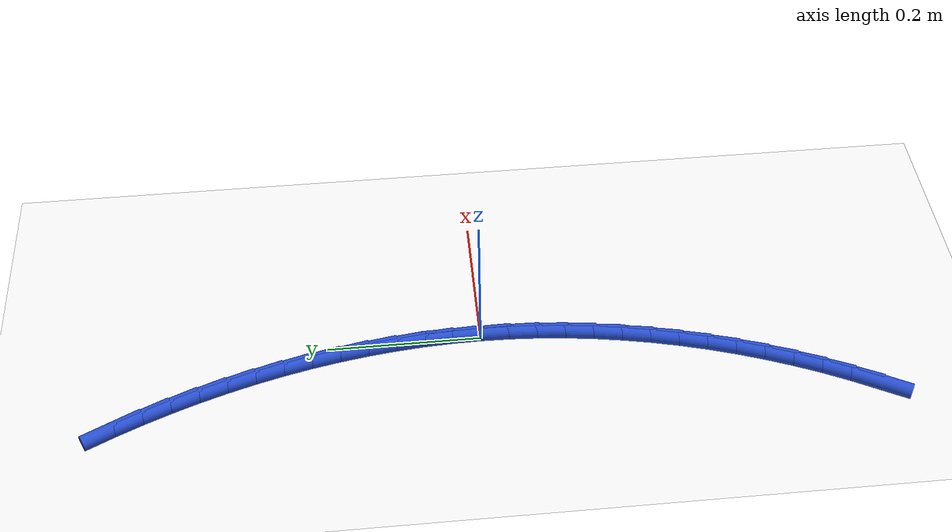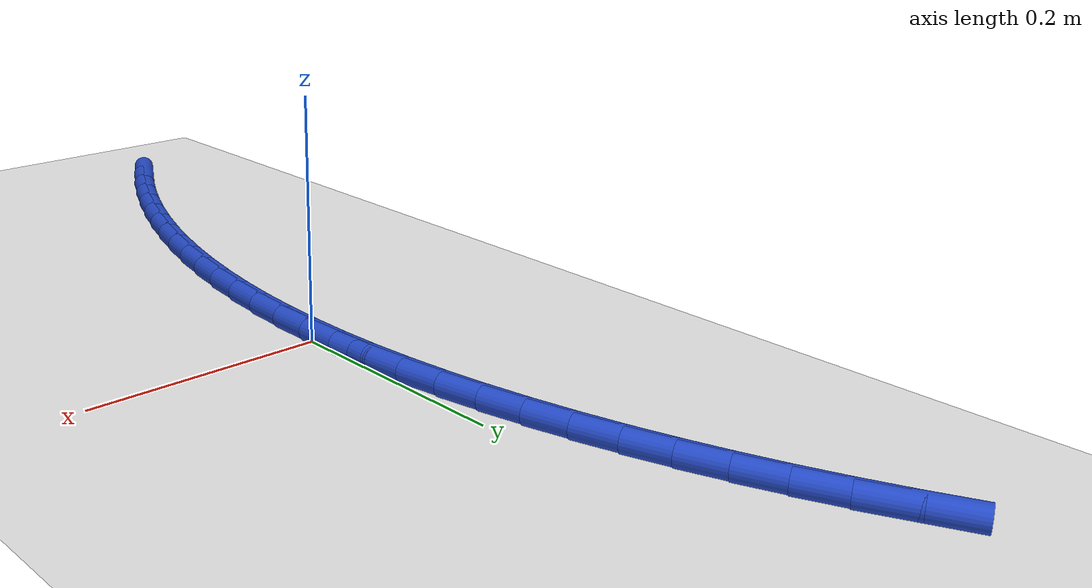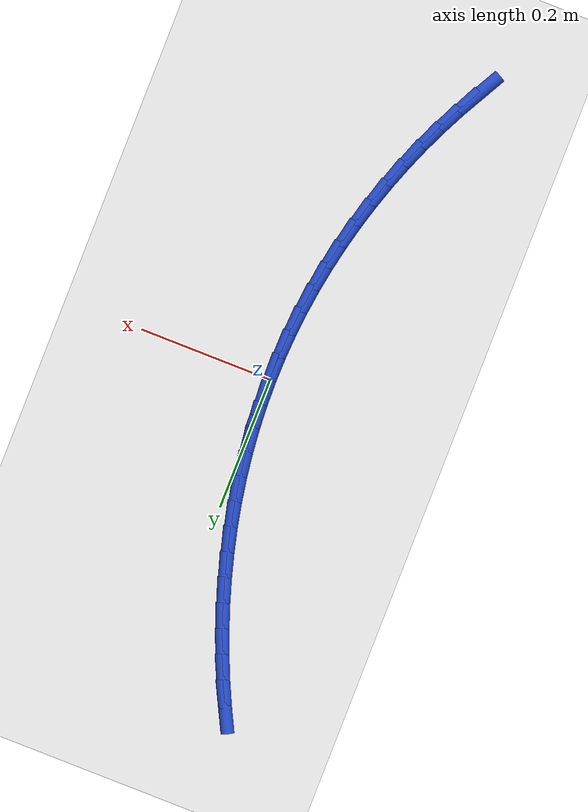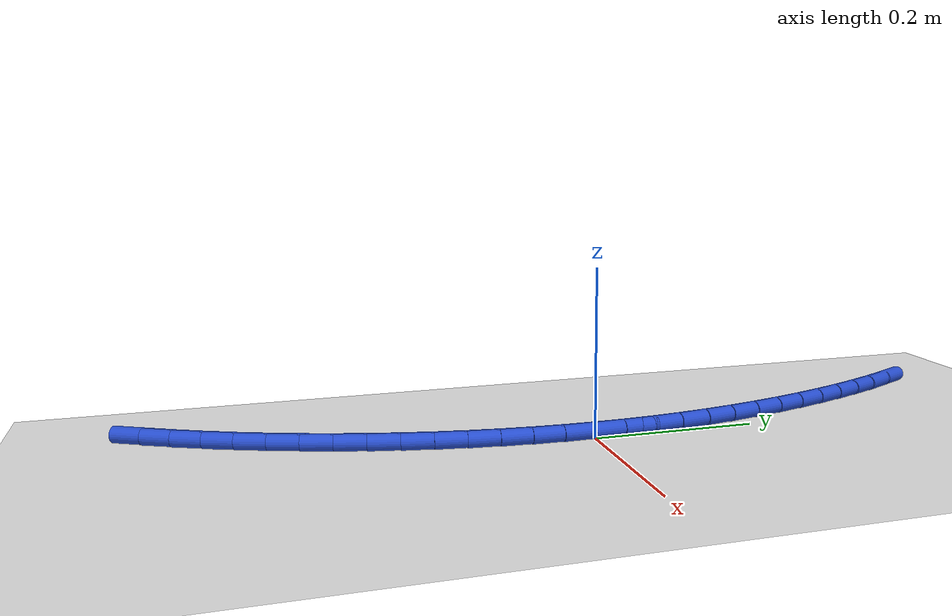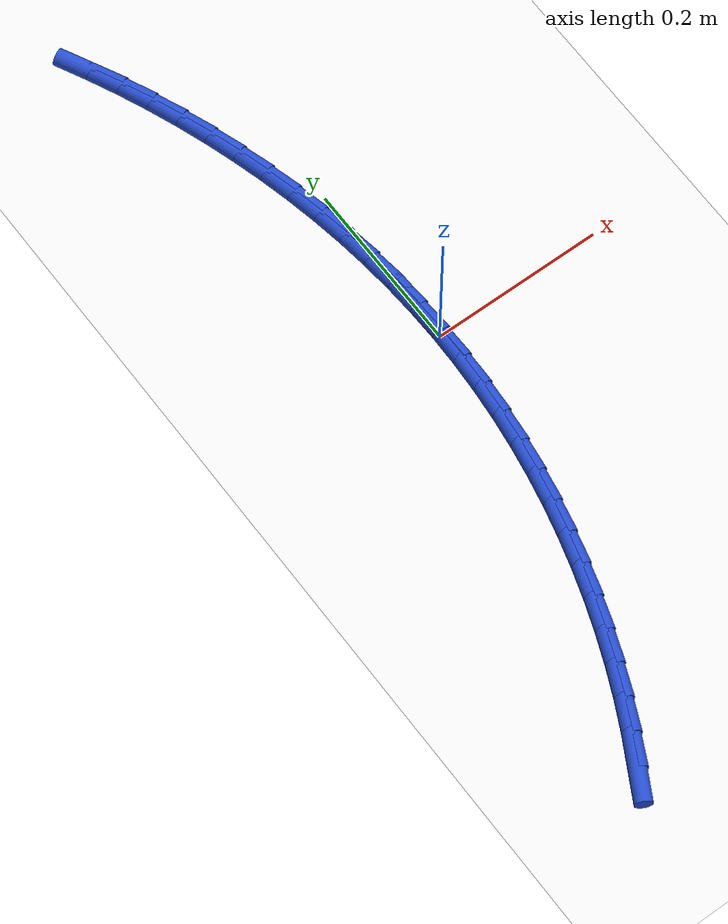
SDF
<sdf version="1.6">
 <world name="default">
  <model name="ground_plane">
   <static>1</static>
   <link name="link">
    <collision name="collision">
     <geometry><plane><normal>0 0 1</normal><size>100 100</size></plane></geometry>
     <surface><friction><ode><mu>100</mu><mu2>50</mu2></ode></friction></surface>
    </collision>
    <visual name="visual">
     <cast_shadows>0</cast_shadows>
     <geometry><plane><normal>0 0 1</normal><size>100 100</size></plane></geometry>
     <material>
      <script><uri>file://media/materials/scripts/gazebo.material</uri><name>Gazebo/WhiteGlow</name></script>
     </material>
    </visual>
   </link>
  </model>
  <model name="line">
   <link name="link_0">
    <pose>1.734723475976807e-18 6.938893903907228e-18 0.01 0 1.57 -1.548803812071096</pose>
    <collision name="collision">
     <geometry><cylinder><radius>0.01</radius><length>0.08</length></cylinder></geometry>
    </collision>
    <visual name="visual">
     <material>
      <script><name>Gazebo/Blue</name><uri>file://media/materials/scripts/gazebo.material</uri></script>
     </material>
     <geometry><cylinder><radius>0.01</radius><length>0.08</length></cylinder></geometry>
    </visual>
   </link>
   <link name="link_1">
    <pose>-0.0008166172128536515 0.0371256111873309 0.01 0 1.57 -1.5104553792389328</pose>
    <collision name="collision">
     <geometry><cylinder><radius>0.01</radius><length>0.08</length></cylinder></geometry>
    </collision>
    <visual name="visual">
     <material>
      <script><name>Gazebo/Blue</name><uri>file://media/materials/scripts/gazebo.material</uri></script>
     </material>
     <geometry><cylinder><radius>0.01</radius><length>0.08</length></cylinder></geometry>
    </visual>
   </link>
   <link name="link_2">
    <pose>-0.003056414222960652 0.07419957259008825 0.01 0 1.57 -1.4729570033766226</pose>
    <collision name="collision">
     <geometry><cylinder><radius>0.01</radius><length>0.08</length></cylinder></geometry>
    </collision>
    <visual name="visual">
     <material>
      <script><name>Gazebo/Blue</name><uri>file://media/materials/scripts/gazebo.material</uri></script>
     </material>
     <geometry><cylinder><radius>0.01</radius><length>0.08</length></cylinder></geometry>
    </visual>
   </link>
   <link name="link_3">
    <pose>-0.006686239691049554 0.11118097981215619 0.01 0 1.57 -1.4362816621876346</pose>
    <collision name="collision">
     <geometry><cylinder><radius>0.01</radius><length>0.08</length></cylinder></geometry>
    </collision>
    <visual name="visual">
     <material>
      <script><name>Gazebo/Blue</name><uri>file://media/materials/scripts/gazebo.material</uri></script>
     </material>
     <geometry><cylinder><radius>0.01</radius><length>0.08</length></cylinder></geometry>
    </visual>
   </link>
   <link name="link_4">
    <pose>-0.011672942277848868 0.14802892845741888 0.01 0 1.57 -1.4003948842519711</pose>
    <collision name="collision">
     <geometry><cylinder><radius>0.01</radius><length>0.08</length></cylinder></geometry>
    </collision>
    <visual name="visual">
     <material>
      <script><name>Gazebo/Blue</name><uri>file://media/materials/scripts/gazebo.material</uri></script>
     </material>
     <geometry><cylinder><radius>0.01</radius><length>0.08</length></cylinder></geometry>
    </visual>
   </link>
   <link name="link_5">
    <pose>-0.01798337064408713 0.18470251412976016 0.01 0 1.57 -1.365255838852558</pose>
    <collision name="collision">
     <geometry><cylinder><radius>0.01</radius><length>0.08</length></cylinder></geometry>
    </collision>
    <visual name="visual">
     <material>
      <script><name>Gazebo/Blue</name><uri>file://media/materials/scripts/gazebo.material</uri></script>
     </material>
     <geometry><cylinder><radius>0.01</radius><length>0.08</length></cylinder></geometry>
    </visual>
   </link>
   <link name="link_6">
    <pose>-0.025584373450492873 0.22116083243306434 0.01 0 1.57 -1.3308183238178624</pose>
    <collision name="collision">
     <geometry><cylinder><radius>0.01</radius><length>0.08</length></cylinder></geometry>
    </collision>
    <visual name="visual">
     <material>
      <script><name>Gazebo/Blue</name><uri>file://media/materials/scripts/gazebo.material</uri></script>
     </material>
     <geometry><cylinder><radius>0.01</radius><length>0.08</length></cylinder></geometry>
    </visual>
   </link>
   <link name="link_7">
    <pose>-0.03444279935779465 0.2573629789712155 0.01 0 1.57 -1.2970316387056642</pose>
    <collision name="collision">
     <geometry><cylinder><radius>0.01</radius><length>0.08</length></cylinder></geometry>
    </collision>
    <visual name="visual">
     <material>
      <script><name>Gazebo/Blue</name><uri>file://media/materials/scripts/gazebo.material</uri></script>
     </material>
     <geometry><cylinder><radius>0.01</radius><length>0.08</length></cylinder></geometry>
    </visual>
   </link>
   <link name="link_8">
    <pose>-0.04452549702672097 0.2932680493480976 0.01 0 1.57 -1.2638413381549296</pose>
    <collision name="collision">
     <geometry><cylinder><radius>0.01</radius><length>0.08</length></cylinder></geometry>
    </collision>
    <visual name="visual">
     <material>
      <script><name>Gazebo/Blue</name><uri>file://media/materials/scripts/gazebo.material</uri></script>
     </material>
     <geometry><cylinder><radius>0.01</radius><length>0.08</length></cylinder></geometry>
    </visual>
   </link>
   <link name="link_9">
    <pose>-0.05579931511800036 0.32883513916759466 0.01 0 1.57 -1.2311793892716603</pose>
    <collision name="collision">
     <geometry><cylinder><radius>0.01</radius><length>0.08</length></cylinder></geometry>
    </collision>
    <visual name="visual">
     <material>
      <script><name>Gazebo/Blue</name><uri>file://media/materials/scripts/gazebo.material</uri></script>
     </material>
     <geometry><cylinder><radius>0.01</radius><length>0.08</length></cylinder></geometry>
    </visual>
   </link>
   <link name="link_10">
    <pose>-0.06823165247662019 0.36402372758744195 0.01 0 1.57 -1.1988521572908928</pose>
    <collision name="collision">
     <geometry><cylinder><radius>0.01</radius><length>0.08</length></cylinder></geometry>
    </collision>
    <visual name="visual">
     <material>
      <script><name>Gazebo/Blue</name><uri>file://media/materials/scripts/gazebo.material</uri></script>
     </material>
     <geometry><cylinder><radius>0.01</radius><length>0.08</length></cylinder></geometry>
    </visual>
   </link>
   <link name="link_11">
    <pose>-0.08179733110301537 0.39879846872233216 0.01 0 1.57 -1.1667260969815054</pose>
    <collision name="collision">
     <geometry><cylinder><radius>0.01</radius><length>0.08</length></cylinder></geometry>
    </collision>
    <visual name="visual">
     <material>
      <script><name>Gazebo/Blue</name><uri>file://media/materials/scripts/gazebo.material</uri></script>
     </material>
     <geometry><cylinder><radius>0.01</radius><length>0.08</length></cylinder></geometry>
    </visual>
   </link>
   <link name="link_12">
    <pose>-0.09647649984277216 0.4331277302282644 0.01 0 1.57 -1.1347705208000163</pose>
    <collision name="collision">
     <geometry><cylinder><radius>0.01</radius><length>0.08</length></cylinder></geometry>
    </collision>
    <visual name="visual">
     <material>
      <script><name>Gazebo/Blue</name><uri>file://media/materials/scripts/gazebo.material</uri></script>
     </material>
     <geometry><cylinder><radius>0.01</radius><length>0.08</length></cylinder></geometry>
    </visual>
   </link>
   <link name="link_13">
    <pose>-0.11224942393682984 0.46697996090475546 0.01 0 1.57 -1.1029559619684848</pose>
    <collision name="collision">
     <geometry><cylinder><radius>0.01</radius><length>0.08</length></cylinder></geometry>
    </collision>
    <visual name="visual">
     <material>
      <script><name>Gazebo/Blue</name><uri>file://media/materials/scripts/gazebo.material</uri></script>
     </material>
     <geometry><cylinder><radius>0.01</radius><length>0.08</length></cylinder></geometry>
    </visual>
   </link>
   <link name="link_166">
    <pose>-0.13236836996853577 -0.49878748490051394 0.01 0 1.57 1.071846116135942</pose>
    <collision name="collision">
     <geometry><cylinder><radius>0.01</radius><length>0.08</length></cylinder></geometry>
    </collision>
    <visual name="visual">
     <material>
      <script><name>Gazebo/Blue</name><uri>file://media/materials/scripts/gazebo.material</uri></script>
     </material>
     <geometry><cylinder><radius>0.01</radius><length>0.08</length></cylinder></geometry>
    </visual>
   </link>
   <link name="link_167">
    <pose>-0.11452196053653454 -0.4660381846349647 0.01 0 1.57 1.1100059144751382</pose>
    <collision name="collision">
     <geometry><cylinder><radius>0.01</radius><length>0.08</length></cylinder></geometry>
    </collision>
    <visual name="visual">
     <material>
      <script><name>Gazebo/Blue</name><uri>file://media/materials/scripts/gazebo.material</uri></script>
     </material>
     <geometry><cylinder><radius>0.01</radius><length>0.08</length></cylinder></geometry>
    </visual>
   </link>
   <link name="link_168">
    <pose>-0.09792374638257312 -0.4326032710675336 0.01 0 1.57 1.1474118358134964</pose>
    <collision name="collision">
     <geometry><cylinder><radius>0.01</radius><length>0.08</length></cylinder></geometry>
    </collision>
    <visual name="visual">
     <material>
      <script><name>Gazebo/Blue</name><uri>file://media/materials/scripts/gazebo.material</uri></script>
     </material>
     <geometry><cylinder><radius>0.01</radius><length>0.08</length></cylinder></geometry>
    </visual>
   </link>
   <link name="link_169">
    <pose>-0.08257861002367538 -0.39855125808914027 0.01 0 1.57 1.184152739063276</pose>
    <collision name="collision">
     <geometry><cylinder><radius>0.01</radius><length>0.08</length></cylinder></geometry>
    </collision>
    <visual name="visual">
     <material>
      <script><name>Gazebo/Blue</name><uri>file://media/materials/scripts/gazebo.material</uri></script>
     </material>
     <geometry><cylinder><radius>0.01</radius><length>0.08</length></cylinder></geometry>
    </visual>
   </link>
   <link name="link_170">
    <pose>-0.06849143397686494 -0.3639506595907034 0.01 0 1.57 1.2203262942171278</pose>
    <collision name="collision">
     <geometry><cylinder><radius>0.01</radius><length>0.08</length></cylinder></geometry>
    </collision>
    <visual name="visual">
     <material>
      <script><name>Gazebo/Blue</name><uri>file://media/materials/scripts/gazebo.material</uri></script>
     </material>
     <geometry><cylinder><radius>0.01</radius><length>0.08</length></cylinder></geometry>
    </visual>
   </link>
   <link name="link_171">
    <pose>-0.05566723465145721 -0.3288698096094247 0.01 0 1.57 1.256252259220384</pose>
    <collision name="collision">
     <geometry><cylinder><radius>0.01</radius><length>0.08</length></cylinder></geometry>
    </collision>
    <visual name="visual">
     <material>
      <script><name>Gazebo/Blue</name><uri>file://media/materials/scripts/gazebo.material</uri></script>
     </material>
     <geometry><cylinder><radius>0.01</radius><length>0.08</length></cylinder></geometry>
    </visual>
   </link>
   <link name="link_172">
    <pose>-0.044117156051066364 -0.29336881115877117 0.01 0 1.57 1.292316653107231</pose>
    <collision name="collision">
     <geometry><cylinder><radius>0.01</radius><length>0.08</length></cylinder></geometry>
    </collision>
    <visual name="visual">
     <material>
      <script><name>Gazebo/Blue</name><uri>file://media/materials/scripts/gazebo.material</uri></script>
     </material>
     <geometry><cylinder><radius>0.01</radius><length>0.08</length></cylinder></geometry>
    </visual>
   </link>
   <link name="link_173">
    <pose>-0.03386088120826571 -0.257496297016653 0.01 0 1.57 1.328599380892623</pose>
    <collision name="collision">
     <geometry><cylinder><radius>0.01</radius><length>0.08</length></cylinder></geometry>
    </collision>
    <visual name="visual">
     <material>
      <script><name>Gazebo/Blue</name><uri>file://media/materials/scripts/gazebo.material</uri></script>
     </material>
     <geometry><cylinder><radius>0.01</radius><length>0.08</length></cylinder></geometry>
    </visual>
   </link>
   <link name="link_174">
    <pose>-0.02491872604542208 -0.22130004981806062 0.01 0 1.57 1.3651553843043034</pose>
    <collision name="collision">
     <geometry><cylinder><radius>0.01</radius><length>0.08</length></cylinder></geometry>
    </collision>
    <visual name="visual">
     <material>
      <script><name>Gazebo/Blue</name><uri>file://media/materials/scripts/gazebo.material</uri></script>
     </material>
     <geometry><cylinder><radius>0.01</radius><length>0.08</length></cylinder></geometry>
    </visual>
   </link>
   <link name="link_175">
    <pose>-0.01731100648490229 -0.18482785219798414 0.01 0 1.57 1.402037931428858</pose>
    <collision name="collision">
     <geometry><cylinder><radius>0.01</radius><length>0.08</length></cylinder></geometry>
    </collision>
    <visual name="visual">
     <material>
      <script><name>Gazebo/Blue</name><uri>file://media/materials/scripts/gazebo.material</uri></script>
     </material>
     <geometry><cylinder><radius>0.01</radius><length>0.08</length></cylinder></geometry>
    </visual>
   </link>
   <link name="link_176">
    <pose>-0.011058038449073066 -0.14812748679141322 0.01 0 1.57 1.439298128001853</pose>
    <collision name="collision">
     <geometry><cylinder><radius>0.01</radius><length>0.08</length></cylinder></geometry>
    </collision>
    <visual name="visual">
     <material>
      <script><name>Gazebo/Blue</name><uri>file://media/materials/scripts/gazebo.material</uri></script>
     </material>
     <geometry><cylinder><radius>0.01</radius><length>0.08</length></cylinder></geometry>
    </visual>
   </link>
   <link name="link_177">
    <pose>-0.006180137860301478 -0.11124673623333953 0.01 0 1.57 1.476984370968986</pose>
    <collision name="collision">
     <geometry><cylinder><radius>0.01</radius><length>0.08</length></cylinder></geometry>
    </collision>
    <visual name="visual">
     <material>
      <script><name>Gazebo/Blue</name><uri>file://media/materials/scripts/gazebo.material</uri></script>
     </material>
     <geometry><cylinder><radius>0.01</radius><length>0.08</length></cylinder></geometry>
    </visual>
   </link>
   <link name="link_178">
    <pose>-0.0026976206409542168 -0.07423338315875253 0.01 0 1.57 1.5151417384751658</pose>
    <collision name="collision">
     <geometry><cylinder><radius>0.01</radius><length>0.08</length></cylinder></geometry>
    </collision>
    <visual name="visual">
     <material>
      <script><name>Gazebo/Blue</name><uri>file://media/materials/scripts/gazebo.material</uri></script>
     </material>
     <geometry><cylinder><radius>0.01</radius><length>0.08</length></cylinder></geometry>
    </visual>
   </link>
   <link name="link_179">
    <pose>-0.0006308027133981155 -0.037135210202642634 0.01 0 1.57 1.553811313150079</pose>
    <collision name="collision">
     <geometry><cylinder><radius>0.01</radius><length>0.08</length></cylinder></geometry>
    </collision>
    <visual name="visual">
     <material>
      <script><name>Gazebo/Blue</name><uri>file://media/materials/scripts/gazebo.material</uri></script>
     </material>
     <geometry><cylinder><radius>0.01</radius><length>0.08</length></cylinder></geometry>
    </visual>
   </link>
   <link name="link_180">
    <pose>1.734723475976807e-18 -4.85722573273506e-17 0.01 0 1.57 -1.5485632144765429</pose>
    <collision name="collision">
     <geometry><cylinder><radius>0.01</radius><length>0.08</length></cylinder></geometry>
    </collision>
    <visual name="visual">
     <material>
      <script><name>Gazebo/Blue</name><uri>file://media/materials/scripts/gazebo.material</uri></script>
     </material>
     <geometry><cylinder><radius>0.01</radius><length>0.08</length></cylinder></geometry>
    </visual>
   </link>
   <link name="link_181">
    <pose>-0.0008255284231266889 0.037124464814184945 0.01 0 1.57 -1.5485632144765429</pose>
    <collision name="collision">
     <geometry><cylinder><radius>0.01</radius><length>0.08</length></cylinder></geometry>
    </collision>
    <visual name="visual">
     <material>
      <script><name>Gazebo/Blue</name><uri>file://media/materials/scripts/gazebo.material</uri></script>
     </material>
     <geometry><cylinder><radius>0.01</radius><length>0.08</length></cylinder></geometry>
    </visual>
   </link>
  </model>
 </world>
</sdf>
